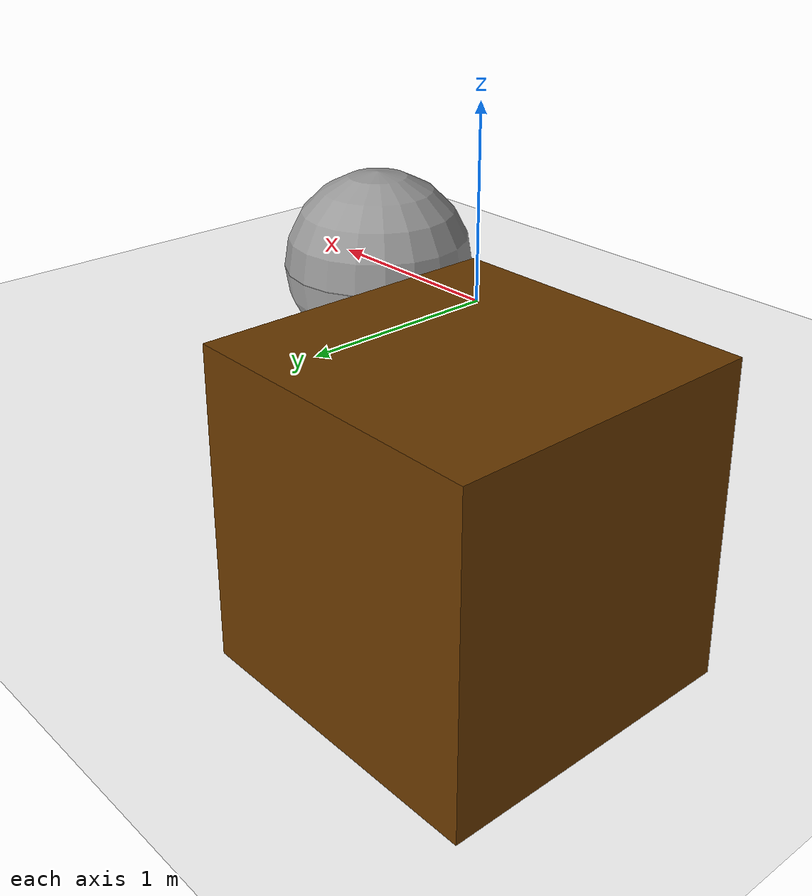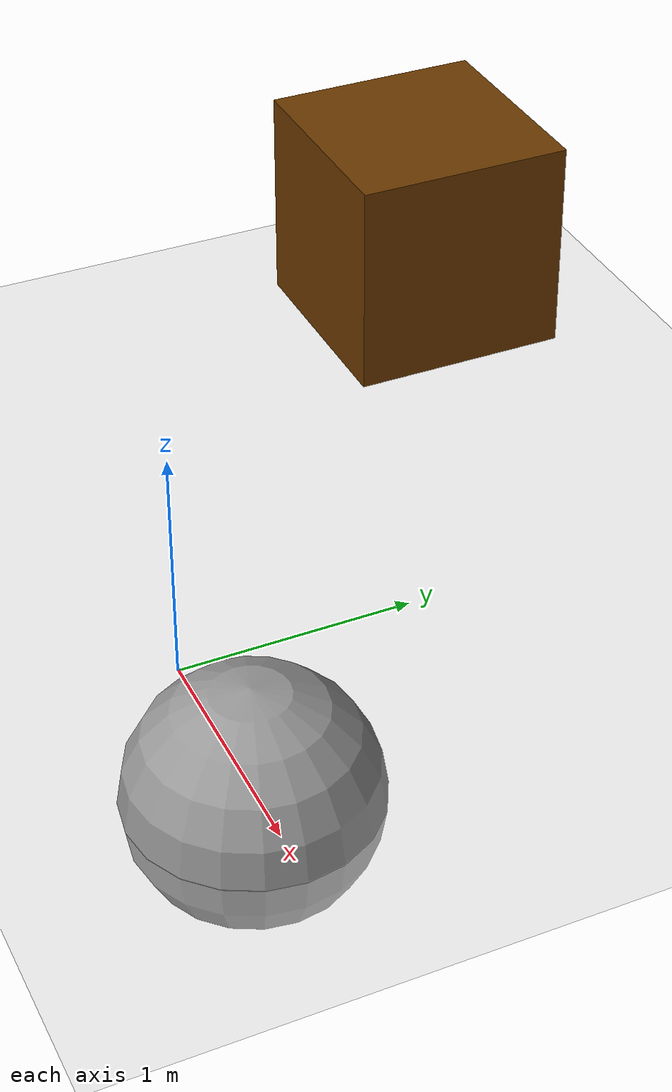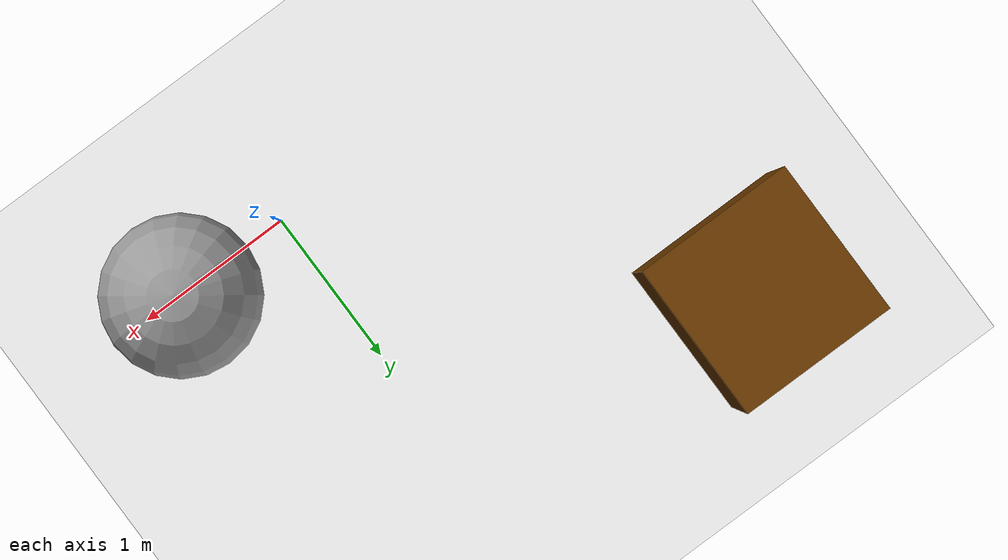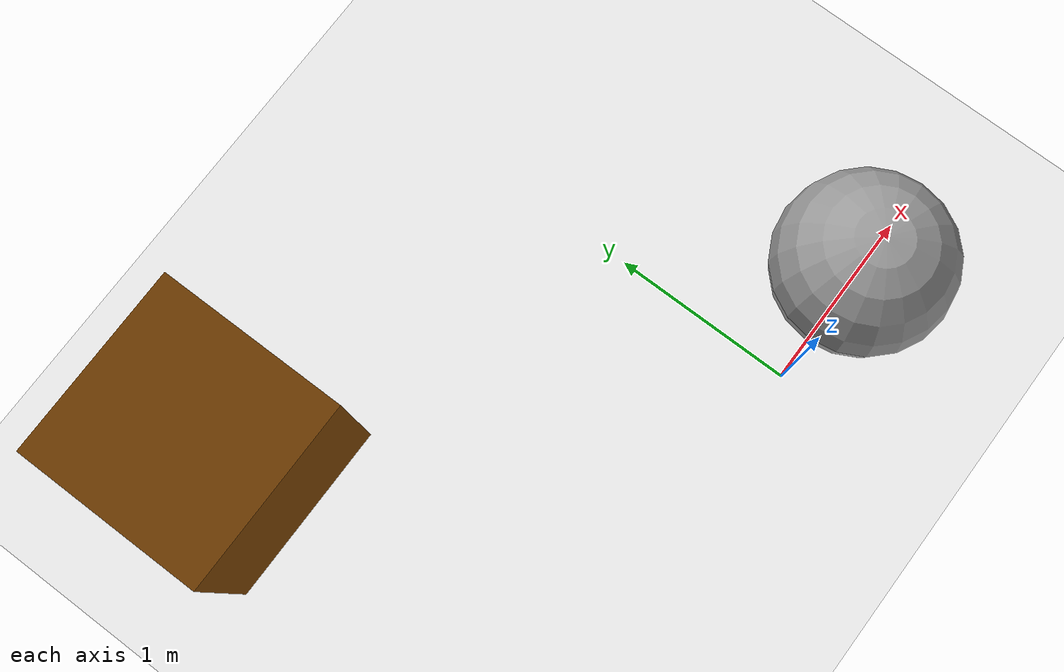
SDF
<?xml version="1.0" ?>
<sdf version="1.5">
    <world name="default">

        <physics type="ode">
        <max_step_size>0.0002</max_step_size>
        <real_time_factor>1</real_time_factor>
        <real_time_update_rate>5000</real_time_update_rate>
        <gravity>0 0 -9.81</gravity>
            <ode>
                <solver>
                <type>quick</type>
                <iters>50</iters>
                <sor>1.3</sor>
                </solver>
                <constraints>
                <cfm>0.0</cfm>
                <erp>0.2</erp>
                <contact_max_correcting_vel>10.0</contact_max_correcting_vel>
                <contact_surface_layer>0.001</contact_surface_layer>
                </constraints>
            </ode>
        </physics>

        <scene>
        <sky>
            <clouds>
                <speed>12</speed>
            </clouds>
        </sky>
        </scene>
        <!-- A global light source -->
        <include>
            <uri>model://sun</uri>
        </include>
        <!-- A ground plane -->
        <include>
            <uri>model://ground_plane</uri>
        </include>
         <model name='unit_sphere'>
      <pose>0.75 0 -0 0 -0 0</pose>
      <static>1</static>
      <link name='link'>
        <inertial>
          <mass>1</mass>
          <inertia>
            <ixx>0.1</ixx>
            <ixy>0</ixy>
            <ixz>0</ixz>
            <iyy>0.1</iyy>
            <iyz>0</iyz>
            <izz>0.1</izz>
          </inertia>
          <pose>0 0 0 0 -0 0</pose>
        </inertial>
        <collision name='collision'>
          <geometry>
            <sphere>
              <radius>0.5</radius>
            </sphere>
          </geometry>
          <max_contacts>10</max_contacts>
          <surface>
            <contact>
              <ode/>
            </contact>
            <bounce/>
            <friction>
              <torsional>
                <ode/>
              </torsional>
              <ode/>
            </friction>
          </surface>
        </collision>
        <visual name='visual'>
          <geometry>
            <sphere>
              <radius>0.5</radius>
            </sphere>
          </geometry>
          <material>
            <script>
              <name>Gazebo/Grey</name>
              <uri>file://media/materials/scripts/gazebo.material</uri>
            </script>
          </material>
        </visual>
        <self_collide>0</self_collide>
        <enable_wind>0</enable_wind>
        <kinematic>0</kinematic>
      </link>
    </model>
        <!-- environment blocks, obstacles or stairs -->
        <model name="static_environment">
        <static>true</static>
            <link name="static_box">
                <pose>-2 2 0.5 0 0 0</pose>
                <collision name="static_box_collision">
                    <geometry>
                        <box>
                            <size>1 1 1</size>
                        </box>
                    </geometry>
                </collision>
                <visual name="static_box_visual">
                    <geometry>
                        <box>
                            <size>1 1 1</size>
                        </box>
                    </geometry>
                    <material>
                        <ambient>0.2 0.2 0.2 1.0</ambient>
                        <diffuse>.421 0.225 0.0 1.0</diffuse>
                    </material>
                </visual>
            </link>
        </model>

    </world>
</sdf>
